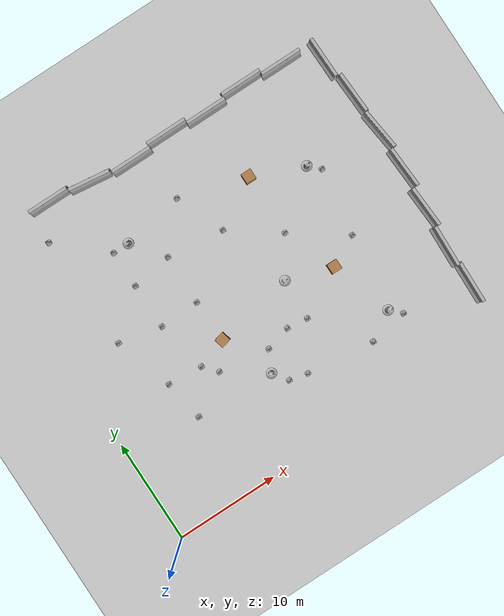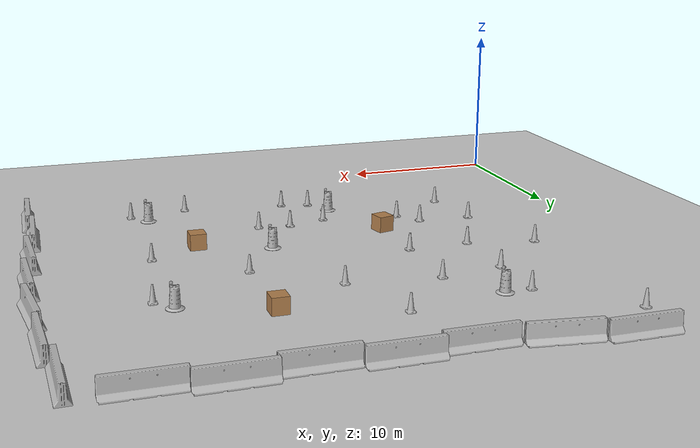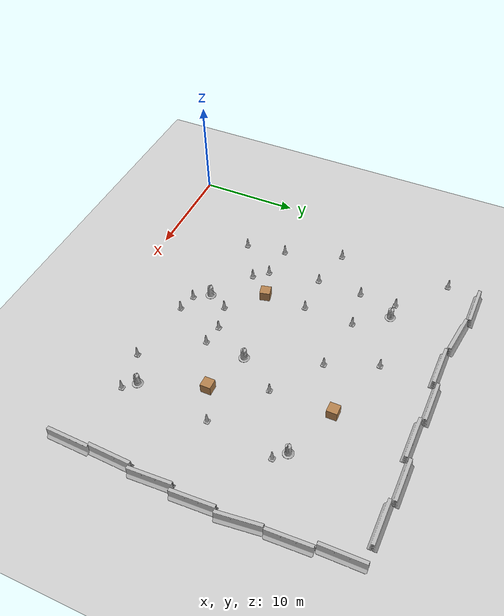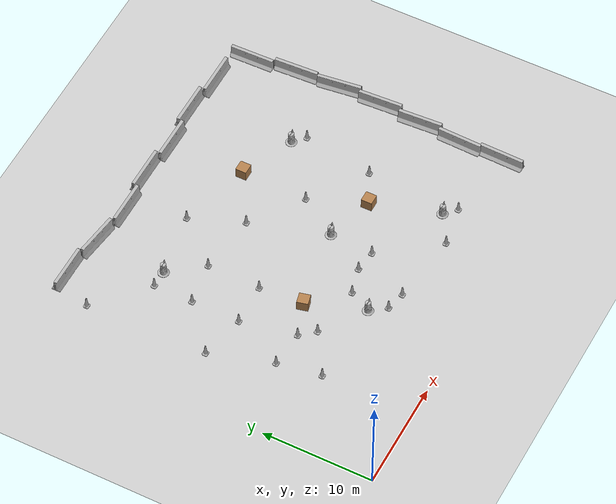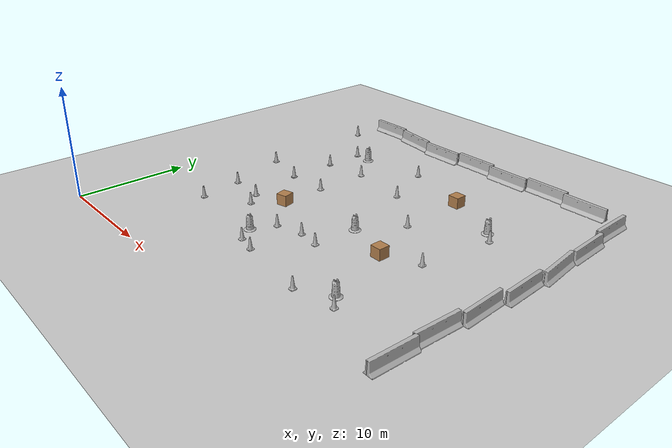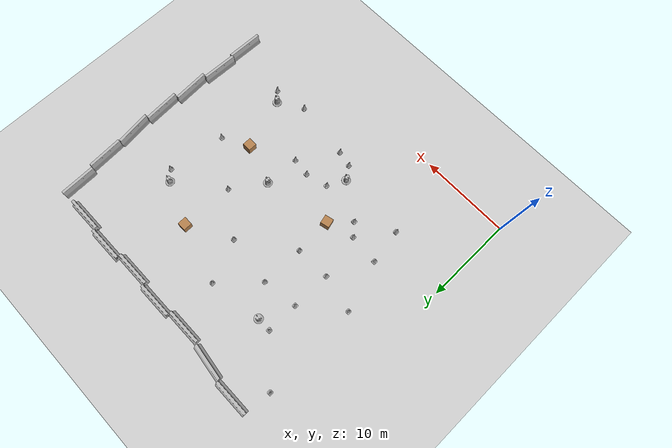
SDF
<sdf version="1.4">
 <world name="default">
  <model name="ground_plane">
   <static>1</static>
   <link name="link">
    <collision name="collision">
     <geometry><plane><normal>0 0 1</normal><size>100 100</size></plane></geometry>
     <surface><friction><ode><mu>100</mu><mu2>50</mu2></ode></friction></surface>
    </collision>
    <visual name="visual">
     <cast_shadows>0</cast_shadows>
     <geometry><plane><normal>0 0 1</normal><size>100 100</size></plane></geometry>
     <material>
      <script><uri>file://media/materials/scripts/gazebo.material</uri><name>Gazebo/Grey</name></script>
     </material>
    </visual>
    <velocity_decay><linear>0</linear><angular>0</angular></velocity_decay>
   </link>
  </model>
  <model name="jersey_barrier_9">
   <static>1</static>
   <link name="link">
    <visual name="visual">
     <geometry><mesh><uri>model://jersey_barrier/meshes/jersey_barrier.dae</uri></mesh></geometry>
    </visual>
    <collision name="upright">
     <pose>0 0 0.5715 0 -0 0</pose>
     <geometry><box><size>4.06542 0.3063 1.143</size></box></geometry>
    </collision>
    <collision name="base">
     <pose>0 0 0.032258 0 -0 0</pose>
     <geometry><box><size>4.06542 0.8107 0.064516</size></box></geometry>
    </collision>
    <collision name="base2">
     <pose>0 0 0.1 0 -0 0</pose>
     <geometry><box><size>4.06542 0.65 0.1</size></box></geometry>
    </collision>
    <collision name="base3">
     <pose>0 0 0.2 0 -0 0</pose>
     <geometry><box><size>4.06542 0.5 0.1</size></box></geometry>
    </collision>
    <collision name="left-angle">
     <pose>0 -0.224 0.2401 0.9 -0 0</pose>
     <geometry><box><size>4.06542 0.5 0.064516</size></box></geometry>
    </collision>
    <collision name="right-angle">
     <pose>0 0.224 0.2401 -0.9 0 0</pose>
     <geometry><box><size>4.06542 0.5 0.064516</size></box></geometry>
    </collision>
    <velocity_decay><linear>0</linear><angular>0</angular></velocity_decay>
   </link>
   <pose>6.77469 32.0696 0 0 -0 0</pose>
  </model>
  <model name="jersey_barrier_10">
   <static>1</static>
   <link name="link">
    <visual name="visual">
     <geometry><mesh><uri>model://jersey_barrier/meshes/jersey_barrier.dae</uri></mesh></geometry>
    </visual>
    <collision name="upright">
     <pose>0 0 0.5715 0 -0 0</pose>
     <geometry><box><size>4.06542 0.3063 1.143</size></box></geometry>
    </collision>
    <collision name="base">
     <pose>0 0 0.032258 0 -0 0</pose>
     <geometry><box><size>4.06542 0.8107 0.064516</size></box></geometry>
    </collision>
    <collision name="base2">
     <pose>0 0 0.1 0 -0 0</pose>
     <geometry><box><size>4.06542 0.65 0.1</size></box></geometry>
    </collision>
    <collision name="base3">
     <pose>0 0 0.2 0 -0 0</pose>
     <geometry><box><size>4.06542 0.5 0.1</size></box></geometry>
    </collision>
    <collision name="left-angle">
     <pose>0 -0.224 0.2401 0.9 -0 0</pose>
     <geometry><box><size>4.06542 0.5 0.064516</size></box></geometry>
    </collision>
    <collision name="right-angle">
     <pose>0 0.224 0.2401 -0.9 0 0</pose>
     <geometry><box><size>4.06542 0.5 0.064516</size></box></geometry>
    </collision>
    <velocity_decay><linear>0</linear><angular>0</angular></velocity_decay>
   </link>
   <pose>10.8346 31.528 0 0 0 -0.129577</pose>
  </model>
  <model name="jersey_barrier_11">
   <static>1</static>
   <link name="link">
    <visual name="visual">
     <geometry><mesh><uri>model://jersey_barrier/meshes/jersey_barrier.dae</uri></mesh></geometry>
    </visual>
    <collision name="upright">
     <pose>0 0 0.5715 0 -0 0</pose>
     <geometry><box><size>4.06542 0.3063 1.143</size></box></geometry>
    </collision>
    <collision name="base">
     <pose>0 0 0.032258 0 -0 0</pose>
     <geometry><box><size>4.06542 0.8107 0.064516</size></box></geometry>
    </collision>
    <collision name="base2">
     <pose>0 0 0.1 0 -0 0</pose>
     <geometry><box><size>4.06542 0.65 0.1</size></box></geometry>
    </collision>
    <collision name="base3">
     <pose>0 0 0.2 0 -0 0</pose>
     <geometry><box><size>4.06542 0.5 0.1</size></box></geometry>
    </collision>
    <collision name="left-angle">
     <pose>0 -0.224 0.2401 0.9 -0 0</pose>
     <geometry><box><size>4.06542 0.5 0.064516</size></box></geometry>
    </collision>
    <collision name="right-angle">
     <pose>0 0.224 0.2401 -0.9 0 0</pose>
     <geometry><box><size>4.06542 0.5 0.064516</size></box></geometry>
    </collision>
    <velocity_decay><linear>0</linear><angular>0</angular></velocity_decay>
   </link>
   <pose>34.5325 5.07874 0 0 -0 1.54369</pose>
  </model>
  <model name="jersey_barrier_20">
   <static>1</static>
   <link name="link">
    <visual name="visual">
     <geometry><mesh><uri>model://jersey_barrier/meshes/jersey_barrier.dae</uri></mesh></geometry>
    </visual>
    <collision name="upright">
     <pose>0 0 0.5715 0 -0 0</pose>
     <geometry><box><size>4.06542 0.3063 1.143</size></box></geometry>
    </collision>
    <collision name="base">
     <pose>0 0 0.032258 0 -0 0</pose>
     <geometry><box><size>4.06542 0.8107 0.064516</size></box></geometry>
    </collision>
    <collision name="base2">
     <pose>0 0 0.1 0 -0 0</pose>
     <geometry><box><size>4.06542 0.65 0.1</size></box></geometry>
    </collision>
    <collision name="base3">
     <pose>0 0 0.2 0 -0 0</pose>
     <geometry><box><size>4.06542 0.5 0.1</size></box></geometry>
    </collision>
    <collision name="left-angle">
     <pose>0 -0.224 0.2401 0.9 -0 0</pose>
     <geometry><box><size>4.06542 0.5 0.064516</size></box></geometry>
    </collision>
    <collision name="right-angle">
     <pose>0 0.224 0.2401 -0.9 0 0</pose>
     <geometry><box><size>4.06542 0.5 0.064516</size></box></geometry>
    </collision>
    <velocity_decay><linear>0</linear><angular>0</angular></velocity_decay>
   </link>
   <pose>34.4391 9.02418 0 0 -0 1.53674</pose>
  </model>
  <model name="Construction Cone">
   <link name="link">
    <collision name="collision">
     <geometry>
      <mesh><scale>10 10 10</scale><uri>model://construction_cone/meshes/construction_cone.dae</uri></mesh>
     </geometry>
    </collision>
    <visual name="visual">
     <geometry>
      <mesh><scale>10 10 10</scale><uri>model://construction_cone/meshes/construction_cone.dae</uri></mesh>
     </geometry>
    </visual>
    <velocity_decay><linear>0</linear><angular>0</angular></velocity_decay>
    <inertial>
     <inertia><ixx>1</ixx><ixy>0</ixy><ixz>0</ixz><iyy>1</iyy><iyz>0</iyz><izz>1</izz></inertia>
     <mass>1</mass>
    </inertial>
   </link>
   <pose>7.29655 8.31428 -1e-06 0 -1e-06 0</pose>
   <static>0</static>
  </model>
  <model name="Construction Cone_1">
   <link name="link">
    <collision name="collision">
     <geometry>
      <mesh><scale>10 10 10</scale><uri>model://construction_cone/meshes/construction_cone.dae</uri></mesh>
     </geometry>
    </collision>
    <visual name="visual">
     <geometry>
      <mesh><scale>10 10 10</scale><uri>model://construction_cone/meshes/construction_cone.dae</uri></mesh>
     </geometry>
    </visual>
    <velocity_decay><linear>0</linear><angular>0</angular></velocity_decay>
    <inertial>
     <inertia><ixx>1</ixx><ixy>0</ixy><ixz>0</ixz><iyy>1</iyy><iyz>0</iyz><izz>1</izz></inertia>
     <mass>1</mass>
    </inertial>
   </link>
   <pose>17.7633 6.19129 -9e-06 0 -0 0</pose>
   <static>0</static>
  </model>
  <model name="Construction Cone_4">
   <link name="link">
    <collision name="collision">
     <geometry>
      <mesh><scale>10 10 10</scale><uri>model://construction_cone/meshes/construction_cone.dae</uri></mesh>
     </geometry>
    </collision>
    <visual name="visual">
     <geometry>
      <mesh><scale>10 10 10</scale><uri>model://construction_cone/meshes/construction_cone.dae</uri></mesh>
     </geometry>
    </visual>
    <velocity_decay><linear>0</linear><angular>0</angular></velocity_decay>
    <inertial>
     <inertia><ixx>1</ixx><ixy>0</ixy><ixz>0</ixz><iyy>1</iyy><iyz>0</iyz><izz>1</izz></inertia>
     <mass>1</mass>
    </inertial>
   </link>
   <pose>11.1056 10.7156 -0 1e-06 2e-06 8.07794e-28</pose>
   <static>0</static>
  </model>
  <model name="Construction Cone_5">
   <link name="link">
    <collision name="collision">
     <geometry>
      <mesh><scale>10 10 10</scale><uri>model://construction_cone/meshes/construction_cone.dae</uri></mesh>
     </geometry>
    </collision>
    <visual name="visual">
     <geometry>
      <mesh><scale>10 10 10</scale><uri>model://construction_cone/meshes/construction_cone.dae</uri></mesh>
     </geometry>
    </visual>
    <velocity_decay><linear>0</linear><angular>0</angular></velocity_decay>
    <inertial>
     <inertia><ixx>1</ixx><ixy>0</ixy><ixz>0</ixz><iyy>1</iyy><iyz>0</iyz><izz>1</izz></inertia>
     <mass>1</mass>
    </inertial>
   </link>
   <pose>6.6571 12.2638 -1e-06 1e-06 3e-06 -4.03897e-28</pose>
   <static>0</static>
  </model>
  <model name="Construction Cone_13">
   <link name="link">
    <collision name="collision">
     <geometry>
      <mesh><scale>10 10 10</scale><uri>model://construction_cone/meshes/construction_cone.dae</uri></mesh>
     </geometry>
    </collision>
    <visual name="visual">
     <geometry>
      <mesh><scale>10 10 10</scale><uri>model://construction_cone/meshes/construction_cone.dae</uri></mesh>
     </geometry>
    </visual>
    <velocity_decay><linear>0</linear><angular>0</angular></velocity_decay>
    <inertial>
     <inertia><ixx>1</ixx><ixy>0</ixy><ixz>0</ixz><iyy>1</iyy><iyz>0</iyz><izz>1</izz></inertia>
     <mass>1</mass>
    </inertial>
   </link>
   <pose>24.2957 5.33859 -0 -0 -0 -0</pose>
   <static>0</static>
  </model>
  <model name="Construction Cone_16">
   <link name="link">
    <collision name="collision">
     <geometry>
      <mesh><scale>10 10 10</scale><uri>model://construction_cone/meshes/construction_cone.dae</uri></mesh>
     </geometry>
    </collision>
    <visual name="visual">
     <geometry>
      <mesh><scale>10 10 10</scale><uri>model://construction_cone/meshes/construction_cone.dae</uri></mesh>
     </geometry>
    </visual>
    <velocity_decay><linear>0</linear><angular>0</angular></velocity_decay>
    <inertial>
     <inertia><ixx>1</ixx><ixy>0</ixy><ixz>0</ixz><iyy>1</iyy><iyz>0</iyz><izz>1</izz></inertia>
     <mass>1</mass>
    </inertial>
   </link>
   <pose>12.9045 21.9904 0 0 -0 0</pose>
   <static>0</static>
  </model>
  <model name="jersey_barrier_27">
   <static>1</static>
   <link name="link">
    <visual name="visual">
     <geometry><mesh><uri>model://jersey_barrier/meshes/jersey_barrier.dae</uri></mesh></geometry>
    </visual>
    <collision name="upright">
     <pose>0 0 0.5715 0 -0 0</pose>
     <geometry><box><size>4.06542 0.3063 1.143</size></box></geometry>
    </collision>
    <collision name="base">
     <pose>0 0 0.032258 0 -0 0</pose>
     <geometry><box><size>4.06542 0.8107 0.064516</size></box></geometry>
    </collision>
    <collision name="base2">
     <pose>0 0 0.1 0 -0 0</pose>
     <geometry><box><size>4.06542 0.65 0.1</size></box></geometry>
    </collision>
    <collision name="base3">
     <pose>0 0 0.2 0 -0 0</pose>
     <geometry><box><size>4.06542 0.5 0.1</size></box></geometry>
    </collision>
    <collision name="left-angle">
     <pose>0 -0.224 0.2401 0.9 -0 0</pose>
     <geometry><box><size>4.06542 0.5 0.064516</size></box></geometry>
    </collision>
    <collision name="right-angle">
     <pose>0 0.224 0.2401 -0.9 0 0</pose>
     <geometry><box><size>4.06542 0.5 0.064516</size></box></geometry>
    </collision>
    <velocity_decay><linear>0</linear><angular>0</angular></velocity_decay>
   </link>
   <pose>15 31 0 0 -0 0</pose>
  </model>
  <model name="jersey_barrier_28">
   <static>1</static>
   <link name="link">
    <visual name="visual">
     <geometry><mesh><uri>model://jersey_barrier/meshes/jersey_barrier.dae</uri></mesh></geometry>
    </visual>
    <collision name="upright">
     <pose>0 0 0.5715 0 -0 0</pose>
     <geometry><box><size>4.06542 0.3063 1.143</size></box></geometry>
    </collision>
    <collision name="base">
     <pose>0 0 0.032258 0 -0 0</pose>
     <geometry><box><size>4.06542 0.8107 0.064516</size></box></geometry>
    </collision>
    <collision name="base2">
     <pose>0 0 0.1 0 -0 0</pose>
     <geometry><box><size>4.06542 0.65 0.1</size></box></geometry>
    </collision>
    <collision name="base3">
     <pose>0 0 0.2 0 -0 0</pose>
     <geometry><box><size>4.06542 0.5 0.1</size></box></geometry>
    </collision>
    <collision name="left-angle">
     <pose>0 -0.224 0.2401 0.9 -0 0</pose>
     <geometry><box><size>4.06542 0.5 0.064516</size></box></geometry>
    </collision>
    <collision name="right-angle">
     <pose>0 0.224 0.2401 -0.9 0 0</pose>
     <geometry><box><size>4.06542 0.5 0.064516</size></box></geometry>
    </collision>
    <velocity_decay><linear>0</linear><angular>0</angular></velocity_decay>
   </link>
   <pose>19 31.4056 0 0 -0 0</pose>
  </model>
  <model name="jersey_barrier_29">
   <static>1</static>
   <link name="link">
    <visual name="visual">
     <geometry><mesh><uri>model://jersey_barrier/meshes/jersey_barrier.dae</uri></mesh></geometry>
    </visual>
    <collision name="upright">
     <pose>0 0 0.5715 0 -0 0</pose>
     <geometry><box><size>4.06542 0.3063 1.143</size></box></geometry>
    </collision>
    <collision name="base">
     <pose>0 0 0.032258 0 -0 0</pose>
     <geometry><box><size>4.06542 0.8107 0.064516</size></box></geometry>
    </collision>
    <collision name="base2">
     <pose>0 0 0.1 0 -0 0</pose>
     <geometry><box><size>4.06542 0.65 0.1</size></box></geometry>
    </collision>
    <collision name="base3">
     <pose>0 0 0.2 0 -0 0</pose>
     <geometry><box><size>4.06542 0.5 0.1</size></box></geometry>
    </collision>
    <collision name="left-angle">
     <pose>0 -0.224 0.2401 0.9 -0 0</pose>
     <geometry><box><size>4.06542 0.5 0.064516</size></box></geometry>
    </collision>
    <collision name="right-angle">
     <pose>0 0.224 0.2401 -0.9 0 0</pose>
     <geometry><box><size>4.06542 0.5 0.064516</size></box></geometry>
    </collision>
    <velocity_decay><linear>0</linear><angular>0</angular></velocity_decay>
   </link>
   <pose>23 31 0 0 -0 0</pose>
  </model>
  <model name="jersey_barrier_30">
   <static>1</static>
   <link name="link">
    <visual name="visual">
     <geometry><mesh><uri>model://jersey_barrier/meshes/jersey_barrier.dae</uri></mesh></geometry>
    </visual>
    <collision name="upright">
     <pose>0 0 0.5715 0 -0 0</pose>
     <geometry><box><size>4.06542 0.3063 1.143</size></box></geometry>
    </collision>
    <collision name="base">
     <pose>0 0 0.032258 0 -0 0</pose>
     <geometry><box><size>4.06542 0.8107 0.064516</size></box></geometry>
    </collision>
    <collision name="base2">
     <pose>0 0 0.1 0 -0 0</pose>
     <geometry><box><size>4.06542 0.65 0.1</size></box></geometry>
    </collision>
    <collision name="base3">
     <pose>0 0 0.2 0 -0 0</pose>
     <geometry><box><size>4.06542 0.5 0.1</size></box></geometry>
    </collision>
    <collision name="left-angle">
     <pose>0 -0.224 0.2401 0.9 -0 0</pose>
     <geometry><box><size>4.06542 0.5 0.064516</size></box></geometry>
    </collision>
    <collision name="right-angle">
     <pose>0 0.224 0.2401 -0.9 0 0</pose>
     <geometry><box><size>4.06542 0.5 0.064516</size></box></geometry>
    </collision>
    <velocity_decay><linear>0</linear><angular>0</angular></velocity_decay>
   </link>
   <pose>27 31.4215 0 0 -0 0</pose>
  </model>
  <model name="jersey_barrier_31">
   <static>1</static>
   <link name="link">
    <visual name="visual">
     <geometry><mesh><uri>model://jersey_barrier/meshes/jersey_barrier.dae</uri></mesh></geometry>
    </visual>
    <collision name="upright">
     <pose>0 0 0.5715 0 -0 0</pose>
     <geometry><box><size>4.06542 0.3063 1.143</size></box></geometry>
    </collision>
    <collision name="base">
     <pose>0 0 0.032258 0 -0 0</pose>
     <geometry><box><size>4.06542 0.8107 0.064516</size></box></geometry>
    </collision>
    <collision name="base2">
     <pose>0 0 0.1 0 -0 0</pose>
     <geometry><box><size>4.06542 0.65 0.1</size></box></geometry>
    </collision>
    <collision name="base3">
     <pose>0 0 0.2 0 -0 0</pose>
     <geometry><box><size>4.06542 0.5 0.1</size></box></geometry>
    </collision>
    <collision name="left-angle">
     <pose>0 -0.224 0.2401 0.9 -0 0</pose>
     <geometry><box><size>4.06542 0.5 0.064516</size></box></geometry>
    </collision>
    <collision name="right-angle">
     <pose>0 0.224 0.2401 -0.9 0 0</pose>
     <geometry><box><size>4.06542 0.5 0.064516</size></box></geometry>
    </collision>
    <velocity_decay><linear>0</linear><angular>0</angular></velocity_decay>
   </link>
   <pose>31 31 0 0 -0 0</pose>
  </model>
  <model name="jersey_barrier_38">
   <static>1</static>
   <link name="link">
    <visual name="visual">
     <geometry><mesh><uri>model://jersey_barrier/meshes/jersey_barrier.dae</uri></mesh></geometry>
    </visual>
    <collision name="upright">
     <pose>0 0 0.5715 0 -0 0</pose>
     <geometry><box><size>4.06542 0.3063 1.143</size></box></geometry>
    </collision>
    <collision name="base">
     <pose>0 0 0.032258 0 -0 0</pose>
     <geometry><box><size>4.06542 0.8107 0.064516</size></box></geometry>
    </collision>
    <collision name="base2">
     <pose>0 0 0.1 0 -0 0</pose>
     <geometry><box><size>4.06542 0.65 0.1</size></box></geometry>
    </collision>
    <collision name="base3">
     <pose>0 0 0.2 0 -0 0</pose>
     <geometry><box><size>4.06542 0.5 0.1</size></box></geometry>
    </collision>
    <collision name="left-angle">
     <pose>0 -0.224 0.2401 0.9 -0 0</pose>
     <geometry><box><size>4.06542 0.5 0.064516</size></box></geometry>
    </collision>
    <collision name="right-angle">
     <pose>0 0.224 0.2401 -0.9 0 0</pose>
     <geometry><box><size>4.06542 0.5 0.064516</size></box></geometry>
    </collision>
    <velocity_decay><linear>0</linear><angular>0</angular></velocity_decay>
   </link>
   <pose>34.463 29.206 0 0 0 -1.54926</pose>
  </model>
  <model name="jersey_barrier_39">
   <static>1</static>
   <link name="link">
    <visual name="visual">
     <geometry><mesh><uri>model://jersey_barrier/meshes/jersey_barrier.dae</uri></mesh></geometry>
    </visual>
    <collision name="upright">
     <pose>0 0 0.5715 0 -0 0</pose>
     <geometry><box><size>4.06542 0.3063 1.143</size></box></geometry>
    </collision>
    <collision name="base">
     <pose>0 0 0.032258 0 -0 0</pose>
     <geometry><box><size>4.06542 0.8107 0.064516</size></box></geometry>
    </collision>
    <collision name="base2">
     <pose>0 0 0.1 0 -0 0</pose>
     <geometry><box><size>4.06542 0.65 0.1</size></box></geometry>
    </collision>
    <collision name="base3">
     <pose>0 0 0.2 0 -0 0</pose>
     <geometry><box><size>4.06542 0.5 0.1</size></box></geometry>
    </collision>
    <collision name="left-angle">
     <pose>0 -0.224 0.2401 0.9 -0 0</pose>
     <geometry><box><size>4.06542 0.5 0.064516</size></box></geometry>
    </collision>
    <collision name="right-angle">
     <pose>0 0.224 0.2401 -0.9 0 0</pose>
     <geometry><box><size>4.06542 0.5 0.064516</size></box></geometry>
    </collision>
    <velocity_decay><linear>0</linear><angular>0</angular></velocity_decay>
   </link>
   <pose>34.9785 25.1169 0 0 0 -1.52193</pose>
  </model>
  <model name="jersey_barrier_40">
   <static>1</static>
   <link name="link">
    <visual name="visual">
     <geometry><mesh><uri>model://jersey_barrier/meshes/jersey_barrier.dae</uri></mesh></geometry>
    </visual>
    <collision name="upright">
     <pose>0 0 0.5715 0 -0 0</pose>
     <geometry><box><size>4.06542 0.3063 1.143</size></box></geometry>
    </collision>
    <collision name="base">
     <pose>0 0 0.032258 0 -0 0</pose>
     <geometry><box><size>4.06542 0.8107 0.064516</size></box></geometry>
    </collision>
    <collision name="base2">
     <pose>0 0 0.1 0 -0 0</pose>
     <geometry><box><size>4.06542 0.65 0.1</size></box></geometry>
    </collision>
    <collision name="base3">
     <pose>0 0 0.2 0 -0 0</pose>
     <geometry><box><size>4.06542 0.5 0.1</size></box></geometry>
    </collision>
    <collision name="left-angle">
     <pose>0 -0.224 0.2401 0.9 -0 0</pose>
     <geometry><box><size>4.06542 0.5 0.064516</size></box></geometry>
    </collision>
    <collision name="right-angle">
     <pose>0 0.224 0.2401 -0.9 0 0</pose>
     <geometry><box><size>4.06542 0.5 0.064516</size></box></geometry>
    </collision>
    <velocity_decay><linear>0</linear><angular>0</angular></velocity_decay>
   </link>
   <pose>35.1351 17.0134 0 0 0 -1.51848</pose>
  </model>
  <model name="jersey_barrier_41">
   <static>1</static>
   <link name="link">
    <visual name="visual">
     <geometry><mesh><uri>model://jersey_barrier/meshes/jersey_barrier.dae</uri></mesh></geometry>
    </visual>
    <collision name="upright">
     <pose>0 0 0.5715 0 -0 0</pose>
     <geometry><box><size>4.06542 0.3063 1.143</size></box></geometry>
    </collision>
    <collision name="base">
     <pose>0 0 0.032258 0 -0 0</pose>
     <geometry><box><size>4.06542 0.8107 0.064516</size></box></geometry>
    </collision>
    <collision name="base2">
     <pose>0 0 0.1 0 -0 0</pose>
     <geometry><box><size>4.06542 0.65 0.1</size></box></geometry>
    </collision>
    <collision name="base3">
     <pose>0 0 0.2 0 -0 0</pose>
     <geometry><box><size>4.06542 0.5 0.1</size></box></geometry>
    </collision>
    <collision name="left-angle">
     <pose>0 -0.224 0.2401 0.9 -0 0</pose>
     <geometry><box><size>4.06542 0.5 0.064516</size></box></geometry>
    </collision>
    <collision name="right-angle">
     <pose>0 0.224 0.2401 -0.9 0 0</pose>
     <geometry><box><size>4.06542 0.5 0.064516</size></box></geometry>
    </collision>
    <velocity_decay><linear>0</linear><angular>0</angular></velocity_decay>
   </link>
   <pose>35.176 21.0314 0 0 0 -1.44901</pose>
  </model>
  <model name="jersey_barrier_42">
   <static>1</static>
   <link name="link">
    <visual name="visual">
     <geometry><mesh><uri>model://jersey_barrier/meshes/jersey_barrier.dae</uri></mesh></geometry>
    </visual>
    <collision name="upright">
     <pose>0 0 0.5715 0 -0 0</pose>
     <geometry><box><size>4.06542 0.3063 1.143</size></box></geometry>
    </collision>
    <collision name="base">
     <pose>0 0 0.032258 0 -0 0</pose>
     <geometry><box><size>4.06542 0.8107 0.064516</size></box></geometry>
    </collision>
    <collision name="base2">
     <pose>0 0 0.1 0 -0 0</pose>
     <geometry><box><size>4.06542 0.65 0.1</size></box></geometry>
    </collision>
    <collision name="base3">
     <pose>0 0 0.2 0 -0 0</pose>
     <geometry><box><size>4.06542 0.5 0.1</size></box></geometry>
    </collision>
    <collision name="left-angle">
     <pose>0 -0.224 0.2401 0.9 -0 0</pose>
     <geometry><box><size>4.06542 0.5 0.064516</size></box></geometry>
    </collision>
    <collision name="right-angle">
     <pose>0 0.224 0.2401 -0.9 0 0</pose>
     <geometry><box><size>4.06542 0.5 0.064516</size></box></geometry>
    </collision>
    <velocity_decay><linear>0</linear><angular>0</angular></velocity_decay>
   </link>
   <pose>34.8095 13.0043 0 0 0 -1.51745</pose>
  </model>
  <model name="unit_box_6">
   <pose>25 13 0.5 0 -0 0</pose>
   <link name="link">
    <inertial>
     <mass>1</mass>
     <inertia><ixx>1</ixx><ixy>0</ixy><ixz>0</ixz><iyy>1</iyy><iyz>0</iyz><izz>1</izz></inertia>
    </inertial>
    <collision name="collision"><geometry><box><size>1 1 1</size></box></geometry></collision>
    <visual name="visual">
     <geometry><box><size>1 1 1</size></box></geometry>
     <material>
      <script><uri>file://media/materials/scripts/gazebo.material</uri><name>Gazebo/Wood</name></script>
     </material>
    </visual>
    <velocity_decay><linear>0</linear><angular>0</angular></velocity_decay>
   </link>
   <static>0</static>
  </model>
  <model name="unit_box_7">
   <pose>23 24 0.5 0 -0 0</pose>
   <link name="link">
    <inertial>
     <mass>1</mass>
     <inertia><ixx>1</ixx><ixy>0</ixy><ixz>0</ixz><iyy>1</iyy><iyz>0</iyz><izz>1</izz></inertia>
    </inertial>
    <collision name="collision"><geometry><box><size>1 1 1</size></box></geometry></collision>
    <visual name="visual">
     <geometry><box><size>1 1 1</size></box></geometry>
     <material>
      <script><uri>file://media/materials/scripts/gazebo.material</uri><name>Gazebo/Wood</name></script>
     </material>
    </visual>
    <velocity_decay><linear>0</linear><angular>0</angular></velocity_decay>
   </link>
   <static>0</static>
  </model>
  <model name="unit_box_8">
   <pose>13 13 0.5 0 -0 0.240179</pose>
   <link name="link">
    <inertial>
     <mass>1</mass>
     <inertia><ixx>1</ixx><ixy>0</ixy><ixz>0</ixz><iyy>1</iyy><iyz>0</iyz><izz>1</izz></inertia>
    </inertial>
    <collision name="collision"><geometry><box><size>1 1 1</size></box></geometry></collision>
    <visual name="visual">
     <geometry><box><size>1 1 1</size></box></geometry>
     <material>
      <script><uri>file://media/materials/scripts/gazebo.material</uri><name>Gazebo/Wood</name></script>
     </material>
    </visual>
    <velocity_decay><linear>0</linear><angular>0</angular></velocity_decay>
   </link>
   <static>0</static>
  </model>
  <model name="Construction Cone_31">
   <link name="link">
    <collision name="collision">
     <geometry>
      <mesh><scale>10 10 10</scale><uri>model://construction_cone/meshes/construction_cone.dae</uri></mesh>
     </geometry>
    </collision>
    <visual name="visual">
     <geometry>
      <mesh><scale>10 10 10</scale><uri>model://construction_cone/meshes/construction_cone.dae</uri></mesh>
     </geometry>
    </visual>
    <velocity_decay><linear>0</linear><angular>0</angular></velocity_decay>
    <inertial>
     <inertia><ixx>1</ixx><ixy>0</ixy><ixz>0</ixz><iyy>1</iyy><iyz>0</iyz><izz>1</izz></inertia>
     <mass>1</mass>
    </inertial>
   </link>
   <pose>9 17 -7e-06 -1e-06 -4e-06 0</pose>
   <static>0</static>
  </model>
  <model name="Construction Cone_35">
   <link name="link">
    <collision name="collision">
     <geometry>
      <mesh><scale>10 10 10</scale><uri>model://construction_cone/meshes/construction_cone.dae</uri></mesh>
     </geometry>
    </collision>
    <visual name="visual">
     <geometry>
      <mesh><scale>10 10 10</scale><uri>model://construction_cone/meshes/construction_cone.dae</uri></mesh>
     </geometry>
    </visual>
    <velocity_decay><linear>0</linear><angular>0</angular></velocity_decay>
    <inertial>
     <inertia><ixx>1</ixx><ixy>0</ixy><ixz>0</ixz><iyy>1</iyy><iyz>0</iyz><izz>1</izz></inertia>
     <mass>1</mass>
    </inertial>
   </link>
   <pose>20.4534 10.4058 -9e-06 0 1e-06 0</pose>
   <static>0</static>
  </model>
  <model name="Construction Cone_36">
   <link name="link">
    <collision name="collision">
     <geometry>
      <mesh><scale>10 10 10</scale><uri>model://construction_cone/meshes/construction_cone.dae</uri></mesh>
     </geometry>
    </collision>
    <visual name="visual">
     <geometry>
      <mesh><scale>10 10 10</scale><uri>model://construction_cone/meshes/construction_cone.dae</uri></mesh>
     </geometry>
    </visual>
    <velocity_decay><linear>0</linear><angular>0</angular></velocity_decay>
    <inertial>
     <inertia><ixx>1</ixx><ixy>0</ixy><ixz>0</ixz><iyy>1</iyy><iyz>0</iyz><izz>1</izz></inertia>
     <mass>1</mass>
    </inertial>
   </link>
   <pose>12.8393 17.1116 -1e-05 0 -0 0</pose>
   <static>0</static>
  </model>
  <model name="Construction Cone_37">
   <link name="link">
    <collision name="collision">
     <geometry>
      <mesh><scale>10 10 10</scale><uri>model://construction_cone/meshes/construction_cone.dae</uri></mesh>
     </geometry>
    </collision>
    <visual name="visual">
     <geometry>
      <mesh><scale>10 10 10</scale><uri>model://construction_cone/meshes/construction_cone.dae</uri></mesh>
     </geometry>
    </visual>
    <velocity_decay><linear>0</linear><angular>0</angular></velocity_decay>
    <inertial>
     <inertia><ixx>1</ixx><ixy>0</ixy><ixz>0</ixz><iyy>1</iyy><iyz>0</iyz><izz>1</izz></inertia>
     <mass>1</mass>
    </inertial>
   </link>
   <pose>4.87162 17.903 0 -1e-06 2e-06 -8.07794e-28</pose>
   <static>0</static>
  </model>
  <model name="Construction Cone_38">
   <link name="link">
    <collision name="collision">
     <geometry>
      <mesh><scale>10 10 10</scale><uri>model://construction_cone/meshes/construction_cone.dae</uri></mesh>
     </geometry>
    </collision>
    <visual name="visual">
     <geometry>
      <mesh><scale>10 10 10</scale><uri>model://construction_cone/meshes/construction_cone.dae</uri></mesh>
     </geometry>
    </visual>
    <velocity_decay><linear>0</linear><angular>0</angular></velocity_decay>
    <inertial>
     <inertia><ixx>1</ixx><ixy>0</ixy><ixz>0</ixz><iyy>1</iyy><iyz>0</iyz><izz>1</izz></inertia>
     <mass>1</mass>
    </inertial>
   </link>
   <pose>9 25 -7e-06 -1e-06 -4e-06 0</pose>
   <static>0</static>
  </model>
  <model name="Construction Cone_39">
   <link name="link">
    <collision name="collision">
     <geometry>
      <mesh><scale>10 10 10</scale><uri>model://construction_cone/meshes/construction_cone.dae</uri></mesh>
     </geometry>
    </collision>
    <visual name="visual">
     <geometry>
      <mesh><scale>10 10 10</scale><uri>model://construction_cone/meshes/construction_cone.dae</uri></mesh>
     </geometry>
    </visual>
    <velocity_decay><linear>0</linear><angular>0</angular></velocity_decay>
    <inertial>
     <inertia><ixx>1</ixx><ixy>0</ixy><ixz>0</ixz><iyy>1</iyy><iyz>0</iyz><izz>1</izz></inertia>
     <mass>1</mass>
    </inertial>
   </link>
   <pose>23 18 0 0 -0 0</pose>
   <static>0</static>
  </model>
  <model name="Construction Cone_40">
   <link name="link">
    <collision name="collision">
     <geometry>
      <mesh><scale>10 10 10</scale><uri>model://construction_cone/meshes/construction_cone.dae</uri></mesh>
     </geometry>
    </collision>
    <visual name="visual">
     <geometry>
      <mesh><scale>10 10 10</scale><uri>model://construction_cone/meshes/construction_cone.dae</uri></mesh>
     </geometry>
    </visual>
    <velocity_decay><linear>0</linear><angular>0</angular></velocity_decay>
    <inertial>
     <inertia><ixx>1</ixx><ixy>0</ixy><ixz>0</ixz><iyy>1</iyy><iyz>0</iyz><izz>1</izz></inertia>
     <mass>1</mass>
    </inertial>
   </link>
   <pose>29 21 0 0 -0 0</pose>
   <static>0</static>
  </model>
  <model name="Construction Cone_42">
   <link name="link">
    <collision name="collision">
     <geometry>
      <mesh><scale>10 10 10</scale><uri>model://construction_cone/meshes/construction_cone.dae</uri></mesh>
     </geometry>
    </collision>
    <visual name="visual">
     <geometry>
      <mesh><scale>10 10 10</scale><uri>model://construction_cone/meshes/construction_cone.dae</uri></mesh>
     </geometry>
    </visual>
    <velocity_decay><linear>0</linear><angular>0</angular></velocity_decay>
    <inertial>
     <inertia><ixx>1</ixx><ixy>0</ixy><ixz>0</ixz><iyy>1</iyy><iyz>0</iyz><izz>1</izz></inertia>
     <mass>1</mass>
    </inertial>
   </link>
   <pose>28 6 0 1e-06 1e-06 0</pose>
   <static>0</static>
  </model>
  <model name="Construction Cone_48">
   <link name="link">
    <collision name="collision">
     <geometry>
      <mesh><scale>10 10 10</scale><uri>model://construction_cone/meshes/construction_cone.dae</uri></mesh>
     </geometry>
    </collision>
    <visual name="visual">
     <geometry>
      <mesh><scale>10 10 10</scale><uri>model://construction_cone/meshes/construction_cone.dae</uri></mesh>
     </geometry>
    </visual>
    <velocity_decay><linear>0</linear><angular>0</angular></velocity_decay>
    <inertial>
     <inertia><ixx>1</ixx><ixy>0</ixy><ixz>0</ixz><iyy>1</iyy><iyz>0</iyz><izz>1</izz></inertia>
     <mass>1</mass>
    </inertial>
   </link>
   <pose>16 10 -0 -2e-06 -0 -0</pose>
   <static>0</static>
  </model>
  <model name="Construction Cone_50">
   <link name="link">
    <collision name="collision">
     <geometry>
      <mesh><scale>10 10 10</scale><uri>model://construction_cone/meshes/construction_cone.dae</uri></mesh>
     </geometry>
    </collision>
    <visual name="visual">
     <geometry>
      <mesh><scale>10 10 10</scale><uri>model://construction_cone/meshes/construction_cone.dae</uri></mesh>
     </geometry>
    </visual>
    <velocity_decay><linear>0</linear><angular>0</angular></velocity_decay>
    <inertial>
     <inertia><ixx>1</ixx><ixy>0</ixy><ixz>0</ixz><iyy>1</iyy><iyz>0</iyz><izz>1</izz></inertia>
     <mass>1</mass>
    </inertial>
   </link>
   <pose>16 6.59341 0 -1e-06 0 0</pose>
   <static>0</static>
  </model>
  <model name="Construction Cone_52">
   <link name="link">
    <collision name="collision">
     <geometry>
      <mesh><scale>10 10 10</scale><uri>model://construction_cone/meshes/construction_cone.dae</uri></mesh>
     </geometry>
    </collision>
    <visual name="visual">
     <geometry>
      <mesh><scale>10 10 10</scale><uri>model://construction_cone/meshes/construction_cone.dae</uri></mesh>
     </geometry>
    </visual>
    <velocity_decay><linear>0</linear><angular>0</angular></velocity_decay>
    <inertial>
     <inertia><ixx>1</ixx><ixy>0</ixy><ixz>0</ixz><iyy>1</iyy><iyz>0</iyz><izz>1</izz></inertia>
     <mass>1</mass>
    </inertial>
   </link>
   <pose>18.4244 21.2998 -0 0 -0 0</pose>
   <static>0</static>
  </model>
  <model name="Construction Cone_55">
   <link name="link">
    <collision name="collision">
     <geometry>
      <mesh><scale>10 10 10</scale><uri>model://construction_cone/meshes/construction_cone.dae</uri></mesh>
     </geometry>
    </collision>
    <visual name="visual">
     <geometry>
      <mesh><scale>10 10 10</scale><uri>model://construction_cone/meshes/construction_cone.dae</uri></mesh>
     </geometry>
    </visual>
    <velocity_decay><linear>0</linear><angular>0</angular></velocity_decay>
    <inertial>
     <inertia><ixx>1</ixx><ixy>0</ixy><ixz>0</ixz><iyy>1</iyy><iyz>0</iyz><izz>1</izz></inertia>
     <mass>1</mass>
    </inertial>
   </link>
   <pose>18.4377 10.6437 -0 0 1e-06 0</pose>
   <static>0</static>
  </model>
  <model name="Construction Cone_56">
   <link name="link">
    <collision name="collision">
     <geometry>
      <mesh><scale>10 10 10</scale><uri>model://construction_cone/meshes/construction_cone.dae</uri></mesh>
     </geometry>
    </collision>
    <visual name="visual">
     <geometry>
      <mesh><scale>10 10 10</scale><uri>model://construction_cone/meshes/construction_cone.dae</uri></mesh>
     </geometry>
    </visual>
    <velocity_decay><linear>0</linear><angular>0</angular></velocity_decay>
    <inertial>
     <inertia><ixx>1</ixx><ixy>0</ixy><ixz>0</ixz><iyy>1</iyy><iyz>0</iyz><izz>1</izz></inertia>
     <mass>1</mass>
    </inertial>
   </link>
   <pose>16.5079 26 -9e-06 1e-06 -0 0</pose>
   <static>0</static>
  </model>
  <model name="Construction Cone_57">
   <link name="link">
    <collision name="collision">
     <geometry>
      <mesh><scale>10 10 10</scale><uri>model://construction_cone/meshes/construction_cone.dae</uri></mesh>
     </geometry>
    </collision>
    <visual name="visual">
     <geometry>
      <mesh><scale>10 10 10</scale><uri>model://construction_cone/meshes/construction_cone.dae</uri></mesh>
     </geometry>
    </visual>
    <velocity_decay><linear>0</linear><angular>0</angular></velocity_decay>
    <inertial>
     <inertia><ixx>1</ixx><ixy>0</ixy><ixz>0</ixz><iyy>1</iyy><iyz>0</iyz><izz>1</izz></inertia>
     <mass>1</mass>
    </inertial>
   </link>
   <pose>4.58309 29 0 -1e-06 2e-06 -8.07794e-28</pose>
   <static>0</static>
  </model>
  <model name="Construction Barrel_2">
   <link name="link">
    <inertial>
     <pose>0 0 0.4 0 -0 0</pose>
     <mass>500</mass>
     <inertia><ixx>51.2096</ixx><iyy>51.2096</iyy><izz>25</izz><ixy>0</ixy><ixz>0</ixz><iyz>0</iyz></inertia>
    </inertial>
    <collision name="collision">
     <geometry><mesh><uri>model://construction_barrel/meshes/construction_barrel.dae</uri></mesh></geometry>
    </collision>
    <visual name="visual">
     <geometry><mesh><uri>model://construction_barrel/meshes/construction_barrel.dae</uri></mesh></geometry>
    </visual>
    <velocity_decay><linear>0</linear><angular>0</angular></velocity_decay>
   </link>
   <pose>20.6298 14.3761 -2e-06 6e-06 2e-06 -0.002914</pose>
   <static>0</static>
  </model>
  <model name="Construction Barrel_6">
   <link name="link">
    <inertial>
     <pose>0 0 0.4 0 -0 0</pose>
     <mass>500</mass>
     <inertia><ixx>51.2096</ixx><iyy>51.2096</iyy><izz>25</izz><ixy>0</ixy><ixz>0</ixz><iyz>0</iyz></inertia>
    </inertial>
    <collision name="collision">
     <geometry><mesh><uri>model://construction_barrel/meshes/construction_barrel.dae</uri></mesh></geometry>
    </collision>
    <visual name="visual">
     <geometry><mesh><uri>model://construction_barrel/meshes/construction_barrel.dae</uri></mesh></geometry>
    </visual>
    <velocity_decay><linear>0</linear><angular>0</angular></velocity_decay>
   </link>
   <pose>10.5953 25.0015 -3e-06 0 -8e-06 -0.002828</pose>
   <static>0</static>
  </model>
  <model name="Construction Barrel_7">
   <link name="link">
    <inertial>
     <pose>0 0 0.4 0 -0 0</pose>
     <mass>500</mass>
     <inertia><ixx>51.2096</ixx><iyy>51.2096</iyy><izz>25</izz><ixy>0</ixy><ixz>0</ixz><iyz>0</iyz></inertia>
    </inertial>
    <collision name="collision">
     <geometry><mesh><uri>model://construction_barrel/meshes/construction_barrel.dae</uri></mesh></geometry>
    </collision>
    <visual name="visual">
     <geometry><mesh><uri>model://construction_barrel/meshes/construction_barrel.dae</uri></mesh></geometry>
    </visual>
    <velocity_decay><linear>0</linear><angular>0</angular></velocity_decay>
   </link>
   <pose>26.9999 7.00162 -4e-06 3.30872e-24 1e-05 -0.002856</pose>
   <static>0</static>
  </model>
  <model name="Construction Barrel_8">
   <link name="link">
    <inertial>
     <pose>0 0 0.4 0 -0 0</pose>
     <mass>500</mass>
     <inertia><ixx>51.2096</ixx><iyy>51.2096</iyy><izz>25</izz><ixy>0</ixy><ixz>0</ixz><iyz>0</iyz></inertia>
    </inertial>
    <collision name="collision">
     <geometry><mesh><uri>model://construction_barrel/meshes/construction_barrel.dae</uri></mesh></geometry>
    </collision>
    <visual name="visual">
     <geometry><mesh><uri>model://construction_barrel/meshes/construction_barrel.dae</uri></mesh></geometry>
    </visual>
    <velocity_decay><linear>0</linear><angular>0</angular></velocity_decay>
   </link>
   <pose>14.9999 8.0016 2e-06 -4e-06 -3e-06 -0.002808</pose>
   <static>0</static>
  </model>
  <model name="Construction Barrel_9">
   <link name="link">
    <inertial>
     <pose>0 0 0.4 0 -0 0</pose>
     <mass>500</mass>
     <inertia><ixx>51.2096</ixx><iyy>51.2096</iyy><izz>25</izz><ixy>0</ixy><ixz>0</ixz><iyz>0</iyz></inertia>
    </inertial>
    <collision name="collision">
     <geometry><mesh><uri>model://construction_barrel/meshes/construction_barrel.dae</uri></mesh></geometry>
    </collision>
    <visual name="visual">
     <geometry><mesh><uri>model://construction_barrel/meshes/construction_barrel.dae</uri></mesh></geometry>
    </visual>
    <velocity_decay><linear>0</linear><angular>0</angular></velocity_decay>
   </link>
   <pose>27.9999 22.0015 -4e-06 3e-06 -6e-06 -0.00268</pose>
   <static>0</static>
  </model>
  <model name="Construction Cone_62">
   <link name="link">
    <collision name="collision">
     <geometry>
      <mesh><scale>10 10 10</scale><uri>model://construction_cone/meshes/construction_cone.dae</uri></mesh>
     </geometry>
    </collision>
    <visual name="visual">
     <geometry>
      <mesh><scale>10 10 10</scale><uri>model://construction_cone/meshes/construction_cone.dae</uri></mesh>
     </geometry>
    </visual>
    <velocity_decay><linear>0</linear><angular>0</angular></velocity_decay>
    <inertial>
     <inertia><ixx>1</ixx><ixy>0</ixy><ixz>0</ixz><iyy>1</iyy><iyz>0</iyz><izz>1</izz></inertia>
     <mass>1</mass>
    </inertial>
   </link>
   <pose>28 14.4756 0 0 -0 0</pose>
   <static>0</static>
  </model>
  <model name="Construction Cone_65">
   <link name="link">
    <collision name="collision">
     <geometry>
      <mesh><scale>10 10 10</scale><uri>model://construction_cone/meshes/construction_cone.dae</uri></mesh>
     </geometry>
    </collision>
    <visual name="visual">
     <geometry>
      <mesh><scale>10 10 10</scale><uri>model://construction_cone/meshes/construction_cone.dae</uri></mesh>
     </geometry>
    </visual>
    <velocity_decay><linear>0</linear><angular>0</angular></velocity_decay>
    <inertial>
     <inertia><ixx>1</ixx><ixy>0</ixy><ixz>0</ixz><iyy>1</iyy><iyz>0</iyz><izz>1</izz></inertia>
     <mass>1</mass>
    </inertial>
   </link>
   <pose>9 21.412 0 2e-06 1e-06 8.07794e-28</pose>
   <static>0</static>
  </model>
  <model name="Construction Cone_66">
   <link name="link">
    <collision name="collision">
     <geometry>
      <mesh><scale>10 10 10</scale><uri>model://construction_cone/meshes/construction_cone.dae</uri></mesh>
     </geometry>
    </collision>
    <visual name="visual">
     <geometry>
      <mesh><scale>10 10 10</scale><uri>model://construction_cone/meshes/construction_cone.dae</uri></mesh>
     </geometry>
    </visual>
    <velocity_decay><linear>0</linear><angular>0</angular></velocity_decay>
    <inertial>
     <inertia><ixx>1</ixx><ixy>0</ixy><ixz>0</ixz><iyy>1</iyy><iyz>0</iyz><izz>1</izz></inertia>
     <mass>1</mass>
    </inertial>
   </link>
   <pose>10 12 -9e-06 0 1e-06 0</pose>
   <static>0</static>
  </model>
 </world>
</sdf>
